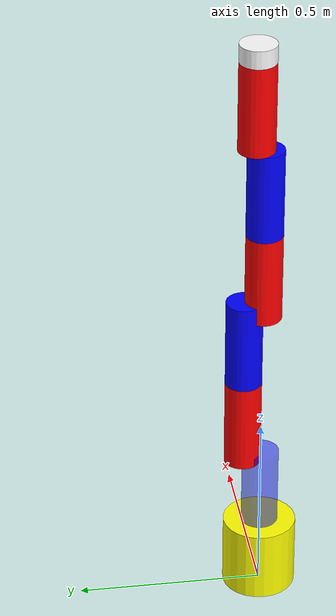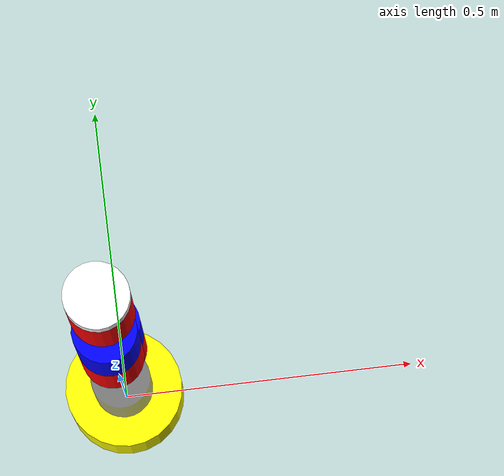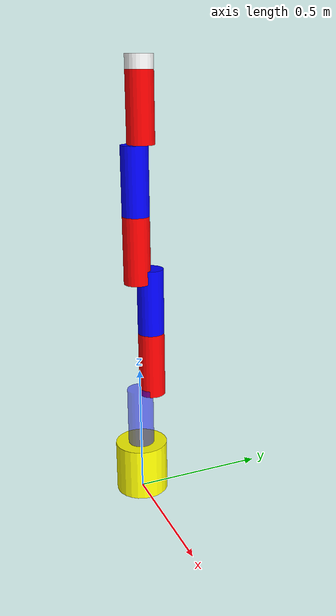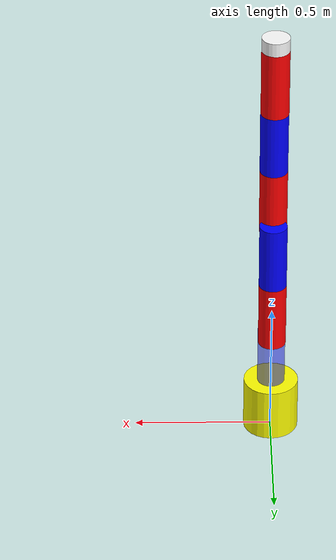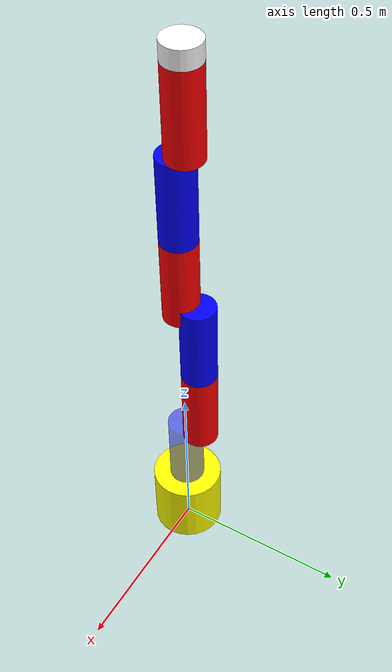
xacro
<?xml version="1.0"?>

<robot name="robot_5" xmlns:xacro="http://wiki.ros.org/xacro">
    <xacro:include filename="$(find exercise_5)/urdf/ex_5_macro.xacro" />

		<xacro:base_link_macro
			base_link_name="base_link">
		</xacro:base_link_macro>

		<xacro:robot_5_joint
			name="Joint_1"
			type="revolute"
			parent="base_link"
			child="link_1">
			<origin xyz="0 0 0.2" />
			<axis xyz="0 0 1"/>
			<limit effort="300" velocity="0.1" lower="-3.14" upper="3.14"/>
		</xacro:robot_5_joint>

		<xacro:robot_5_link name="link_1" material="blue">
			<geometry>
				<cylinder length="0.25" radius="0.05"/>
			</geometry>
			<origin xyz="0 0 0.1" rpy="0 0 0"/>
			<color rgba="0 0 1 0.5"/>
		</xacro:robot_5_link>

		<xacro:robot_5_joint
			name="Joint_2"
			type="revolute"
			parent="link_1"
			child="link_2">
			<origin xyz="0 0 0.2" />
			<axis xyz="0 1 0"/>
			<limit effort="300" velocity="0.1" lower="-1.57" upper="1.57"/>
		</xacro:robot_5_joint>

		<xacro:robot_5_link name="link_2" material="red">
			<geometry>
				<cylinder length="0.25" radius="0.05"/>
			</geometry>
			<origin xyz="0 0.05 0.125" rpy="0 0 0"/>
			<color rgba="1 0 0 1"/>
		</xacro:robot_5_link>

		<xacro:robot_5_joint
			name="Joint_3"
			type="revolute"
			parent="link_2"
			child="link_3">
			<origin xyz="0 0.05 0.25" />
			<axis xyz="0 0 1"/>
			<limit effort="300" velocity="0.1" lower="-3.14" upper="3.14"/>
		</xacro:robot_5_joint>

		<xacro:robot_5_link name="link_3" material="blue">
			<geometry>
				<cylinder length="0.25" radius="0.05"/>
			</geometry>
			<origin xyz="0 0 0.125" rpy="0 0 0"/>
			<color rgba="0 0 1 1"/>
		</xacro:robot_5_link>

		<xacro:robot_5_joint
			name="Joint_4"
			type="revolute"
			parent="link_3"
			child="link_4">
			<origin xyz="0 0 0.2" />
			<axis xyz="0 1 0"/>
			<limit effort="300" velocity="0.1" lower="-1.57" upper="1.57"/>
		</xacro:robot_5_joint>

		<xacro:robot_5_link name="link_4" material="red">
			<geometry>
				<cylinder length="0.25" radius="0.05"/>
			</geometry>
			<origin xyz="0 -0.05 0.125" rpy="0 0 0"/>
			<color rgba="1 0 0 1"/>
		</xacro:robot_5_link>

		<xacro:robot_5_joint
			name="Joint_5"
			type="revolute"
			parent="link_4"
			child="link_5">
			<origin xyz="0 -0.05 0.25" />
			<axis xyz="0 0 1"/>
			<limit effort="300" velocity="0.1" lower="-3.14" upper="3.14"/>
		</xacro:robot_5_joint>

		<xacro:robot_5_link name="link_5" material="blue">
			<geometry>
				<cylinder length="0.25" radius="0.05"/>
			</geometry>
			<origin xyz="0 0 0.125" rpy="0 0 0"/>
			<color rgba="0 0 1 1"/>
		</xacro:robot_5_link>

		<xacro:robot_5_joint
			name="Joint_6"
			type="revolute"
			parent="link_5"
			child="link_6">
			<origin xyz="0 0.025 0.25" />
			<axis xyz="0 1 0"/>
			<limit effort="300" velocity="0.1" lower="-1.57" upper="1.57"/>
		</xacro:robot_5_joint>

		<xacro:robot_5_link name="link_6" material="red">
			<geometry>
				<cylinder length="0.25" radius="0.05"/>
			</geometry>
			<origin xyz="0 0 0.125" rpy="0 0 0"/>
			<color rgba="1 0 0 1"/>
		</xacro:robot_5_link>

		<xacro:robot_5_joint
			name="Joint_7"
			type="revolute"
			parent="link_6"
			child="link_7">
			<origin xyz="0 0 0.25" />
			<axis xyz="0 0 1"/>
			<limit effort="300" velocity="0.1" lower="-3.14" upper="3.14"/>
		</xacro:robot_5_joint>

		<xacro:robot_5_link name="link_7" material="white">
			<geometry>
				<cylinder length="0.05" radius="0.05"/>
			</geometry>
			<origin xyz="0 0 0.025" rpy="0 0 0"/>
			<color rgba="1 1 1 1"/>
		</xacro:robot_5_link>

	</robot>

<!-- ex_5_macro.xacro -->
<robot name="robot_5_macro" xmlns:xacro="http://wiki.ros.org/xacro">

	<xacro:macro name="base_link_macro" params="base_link_name">
		<link name="${base_link_name}">
			<visual>
				<geometry>
					<cylinder length="0.2" radius="0.1"/>
				</geometry>
				<origin rpy="0 0 0" xyz="0 0 0.1"/>
					<material name="yellow">
						<color rgba="1 1 0 1"/>
					</material>
			</visual>
			<collision>
				<geometry>
					<cylinder length="0.4" radius="0.1"/>
				</geometry>
				<origin rpy="0 0 0" xyz="0 0 0.6"/>
			</collision>
			<inertial>
				<mass value="1"/>
					<inertia ixx="1.0" ixy="0.0" ixz="0.0" iyy="1.0" iyz="0.0" izz="1.0"/>
					</inertial>
		</link>
	</xacro:macro>

	<xacro:macro name="robot_5_joint" params="name type parent child *origin *axis *limit">
		<joint name="${name}" type="${type}">
			<parent link="${parent}" />
			<child link="${child}" />
	    <xacro:insert_block name="origin" />
			<xacro:insert_block name="axis" />
	    <xacro:insert_block name="limit"/>
	    <dynamics damping="50" friction="1"/>
		</joint>
	</xacro:macro>

	<xacro:macro name="robot_5_link" params="name *geometry *origin material *color">
		<link name="${name}">
			<visual>
				<xacro:insert_block name="geometry" />
				<xacro:insert_block name="origin" />
			  	<material name="${material}">
		     		 	<xacro:insert_block name="color" />
		   	         </material>

		  	</visual>
		  <collision>
				<xacro:insert_block name="geometry" />
				<xacro:insert_block name="origin" />
		  </collision>
			<inertial>
				<mass value="1"/>
					<inertia ixx="1.0" ixy="0.0" ixz="0.0" iyy="1.0" iyz="0.0" izz="1.0"/>
		  </inertial>
	  </link>
	</xacro:macro>
</robot>
